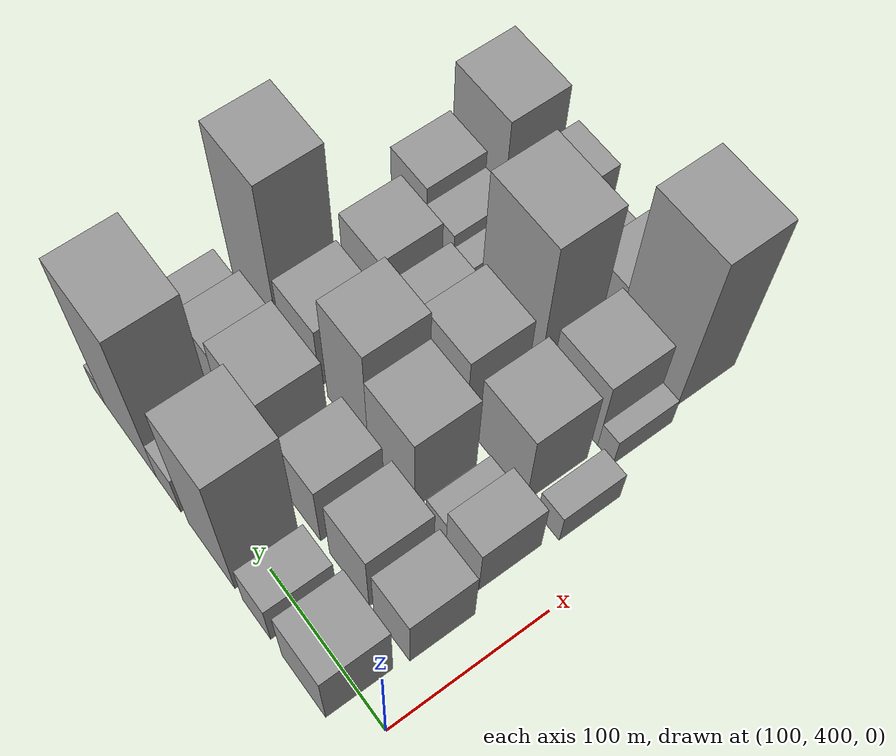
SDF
<sdf version="1.6">
 <world name="default">
  <model name="building_36">
   <static>1</static>
   <pose>100.0000 441.1656 0 0.000000 0.000000 0.000000</pose>
   <link name="link">
    <pose>0 0 31.50 0 0 0</pose>
    <collision name="collision"><geometry><box><size>40.0000 37.6408 63.0000</size></box></geometry></collision>
    <visual name="visual">
     <cast_shadows>0</cast_shadows>
     <geometry><box><size>40.0000 37.6408 63.0000</size></box></geometry>
     <material>
      <script>
       <uri>model://grey_wall/materials/scripts</uri>
       <uri>model://grey_wall/materials/textures</uri>
       <name>vrc/grey_wall</name>
      </script>
     </material>
    </visual>
   </link>
  </model>
  <model name="building_37">
   <static>1</static>
   <pose>100.0000 482.5473 0 0.000000 0.000000 0.000000</pose>
   <link name="link">
    <pose>0 0 22.50 0 0 0</pose>
    <collision name="collision"><geometry><box><size>40.0000 25.1226 45.0000</size></box></geometry></collision>
    <visual name="visual">
     <cast_shadows>0</cast_shadows>
     <geometry><box><size>40.0000 25.1226 45.0000</size></box></geometry>
     <material>
      <script>
       <uri>model://grey_wall/materials/scripts</uri>
       <uri>model://grey_wall/materials/textures</uri>
       <name>vrc/grey_wall</name>
      </script>
     </material>
    </visual>
   </link>
  </model>
  <model name="building_38">
   <static>1</static>
   <pose>100.0000 523.8339 0 0.000000 0.000000 0.000000</pose>
   <link name="link">
    <pose>0 0 69.00 0 0 0</pose>
    <collision name="collision"><geometry><box><size>40.0000 43.4507 138.0000</size></box></geometry></collision>
    <visual name="visual">
     <cast_shadows>0</cast_shadows>
     <geometry><box><size>40.0000 43.4507 138.0000</size></box></geometry>
     <material>
      <script>
       <uri>model://grey_wall/materials/scripts</uri>
       <uri>model://grey_wall/materials/textures</uri>
       <name>vrc/grey_wall</name>
      </script>
     </material>
    </visual>
   </link>
  </model>
  <model name="building_39">
   <static>1</static>
   <pose>100.0000 564.3673 0 0.000000 0.000000 0.000000</pose>
   <link name="link">
    <pose>0 0 21.00 0 0 0</pose>
    <collision name="collision"><geometry><box><size>40.0000 23.6162 42.0000</size></box></geometry></collision>
    <visual name="visual">
     <cast_shadows>0</cast_shadows>
     <geometry><box><size>40.0000 23.6162 42.0000</size></box></geometry>
     <material>
      <script>
       <uri>model://grey_wall/materials/scripts</uri>
       <uri>model://grey_wall/materials/textures</uri>
       <name>vrc/grey_wall</name>
      </script>
     </material>
    </visual>
   </link>
  </model>
  <model name="building_40">
   <static>1</static>
   <pose>100.0000 601.8708 0 0.000000 0.000000 0.000000</pose>
   <link name="link">
    <pose>0 0 78.00 0 0 0</pose>
    <collision name="collision"><geometry><box><size>40.0000 51.3907 156.0000</size></box></geometry></collision>
    <visual name="visual">
     <cast_shadows>0</cast_shadows>
     <geometry><box><size>40.0000 51.3907 156.0000</size></box></geometry>
     <material>
      <script>
       <uri>model://grey_wall/materials/scripts</uri>
       <uri>model://grey_wall/materials/textures</uri>
       <name>vrc/grey_wall</name>
      </script>
     </material>
    </visual>
   </link>
  </model>
  <model name="building_41">
   <static>1</static>
   <pose>100.0000 633.8620 0 0.000000 0.000000 0.000000</pose>
   <link name="link">
    <pose>0 0 13.50 0 0 0</pose>
    <collision name="collision"><geometry><box><size>40.0000 12.5917 27.0000</size></box></geometry></collision>
    <visual name="visual">
     <cast_shadows>0</cast_shadows>
     <geometry><box><size>40.0000 12.5917 27.0000</size></box></geometry>
     <material>
      <script>
       <uri>model://grey_wall/materials/scripts</uri>
       <uri>model://grey_wall/materials/textures</uri>
       <name>vrc/grey_wall</name>
      </script>
     </material>
    </visual>
   </link>
  </model>
  <model name="building_84">
   <static>1</static>
   <pose>149.0000 435.7550 0 0.000000 0.000000 0.000000</pose>
   <link name="link">
    <pose>0 0 28.50 0 0 0</pose>
    <collision name="collision"><geometry><box><size>40.0000 30.4782 57.0000</size></box></geometry></collision>
    <visual name="visual">
     <cast_shadows>0</cast_shadows>
     <geometry><box><size>40.0000 30.4782 57.0000</size></box></geometry>
     <material>
      <script>
       <uri>model://grey_wall/materials/scripts</uri>
       <uri>model://grey_wall/materials/textures</uri>
       <name>vrc/grey_wall</name>
      </script>
     </material>
    </visual>
   </link>
  </model>
  <model name="building_85">
   <static>1</static>
   <pose>149.0000 472.2001 0 0.000000 0.000000 0.000000</pose>
   <link name="link">
    <pose>0 0 33.00 0 0 0</pose>
    <collision name="collision"><geometry><box><size>40.0000 34.4119 66.0000</size></box></geometry></collision>
    <visual name="visual">
     <cast_shadows>0</cast_shadows>
     <geometry><box><size>40.0000 34.4119 66.0000</size></box></geometry>
     <material>
      <script>
       <uri>model://grey_wall/materials/scripts</uri>
       <uri>model://grey_wall/materials/textures</uri>
       <name>vrc/grey_wall</name>
      </script>
     </material>
    </visual>
   </link>
  </model>
  <model name="building_86">
   <static>1</static>
   <pose>149.0000 514.1675 0 0.000000 0.000000 0.000000</pose>
   <link name="link">
    <pose>0 0 33.00 0 0 0</pose>
    <collision name="collision"><geometry><box><size>40.0000 33.5229 66.0000</size></box></geometry></collision>
    <visual name="visual">
     <cast_shadows>0</cast_shadows>
     <geometry><box><size>40.0000 33.5229 66.0000</size></box></geometry>
     <material>
      <script>
       <uri>model://grey_wall/materials/scripts</uri>
       <uri>model://grey_wall/materials/textures</uri>
       <name>vrc/grey_wall</name>
      </script>
     </material>
    </visual>
   </link>
  </model>
  <model name="building_87">
   <static>1</static>
   <pose>149.0000 542.8155 0 0.000000 0.000000 0.000000</pose>
   <link name="link">
    <pose>0 0 12.00 0 0 0</pose>
    <collision name="collision"><geometry><box><size>40.0000 9.7730 24.0000</size></box></geometry></collision>
    <visual name="visual">
     <cast_shadows>0</cast_shadows>
     <geometry><box><size>40.0000 9.7730 24.0000</size></box></geometry>
     <material>
      <script>
       <uri>model://grey_wall/materials/scripts</uri>
       <uri>model://grey_wall/materials/textures</uri>
       <name>vrc/grey_wall</name>
      </script>
     </material>
    </visual>
   </link>
  </model>
  <model name="building_88">
   <static>1</static>
   <pose>149.0000 569.1627 0 0.000000 0.000000 0.000000</pose>
   <link name="link">
    <pose>0 0 37.50 0 0 0</pose>
    <collision name="collision"><geometry><box><size>40.0000 42.9213 75.0000</size></box></geometry></collision>
    <visual name="visual">
     <cast_shadows>0</cast_shadows>
     <geometry><box><size>40.0000 42.9213 75.0000</size></box></geometry>
     <material>
      <script>
       <uri>model://grey_wall/materials/scripts</uri>
       <uri>model://grey_wall/materials/textures</uri>
       <name>vrc/grey_wall</name>
      </script>
     </material>
    </visual>
   </link>
  </model>
  <model name="building_89">
   <static>1</static>
   <pose>149.0000 606.3343 0 0.000000 0.000000 0.000000</pose>
   <link name="link">
    <pose>0 0 30.00 0 0 0</pose>
    <collision name="collision"><geometry><box><size>40.0000 31.4221 60.0000</size></box></geometry></collision>
    <visual name="visual">
     <cast_shadows>0</cast_shadows>
     <geometry><box><size>40.0000 31.4221 60.0000</size></box></geometry>
     <material>
      <script>
       <uri>model://grey_wall/materials/scripts</uri>
       <uri>model://grey_wall/materials/textures</uri>
       <name>vrc/grey_wall</name>
      </script>
     </material>
    </visual>
   </link>
  </model>
  <model name="building_90">
   <static>1</static>
   <pose>149.0000 639.8095 0 0.000000 0.000000 0.000000</pose>
   <link name="link">
    <pose>0 0 21.00 0 0 0</pose>
    <collision name="collision"><geometry><box><size>40.0000 21.5283 42.0000</size></box></geometry></collision>
    <visual name="visual">
     <cast_shadows>0</cast_shadows>
     <geometry><box><size>40.0000 21.5283 42.0000</size></box></geometry>
     <material>
      <script>
       <uri>model://grey_wall/materials/scripts</uri>
       <uri>model://grey_wall/materials/textures</uri>
       <name>vrc/grey_wall</name>
      </script>
     </material>
    </visual>
   </link>
  </model>
  <model name="building_133">
   <static>1</static>
   <pose>198.0000 442.9491 0 0.000000 0.000000 0.000000</pose>
   <link name="link">
    <pose>0 0 25.50 0 0 0</pose>
    <collision name="collision"><geometry><box><size>40.0000 27.4139 51.0000</size></box></geometry></collision>
    <visual name="visual">
     <cast_shadows>0</cast_shadows>
     <geometry><box><size>40.0000 27.4139 51.0000</size></box></geometry>
     <material>
      <script>
       <uri>model://grey_wall/materials/scripts</uri>
       <uri>model://grey_wall/materials/textures</uri>
       <name>vrc/grey_wall</name>
      </script>
     </material>
    </visual>
   </link>
  </model>
  <model name="building_134">
   <static>1</static>
   <pose>198.0000 465.0975 0 0.000000 0.000000 0.000000</pose>
   <link name="link">
    <pose>0 0 16.50 0 0 0</pose>
    <collision name="collision"><geometry><box><size>40.0000 16.8830 33.0000</size></box></geometry></collision>
    <visual name="visual">
     <cast_shadows>0</cast_shadows>
     <geometry><box><size>40.0000 16.8830 33.0000</size></box></geometry>
     <material>
      <script>
       <uri>model://grey_wall/materials/scripts</uri>
       <uri>model://grey_wall/materials/textures</uri>
       <name>vrc/grey_wall</name>
      </script>
     </material>
    </visual>
   </link>
  </model>
  <model name="building_135">
   <static>1</static>
   <pose>198.0000 503.9978 0 0.000000 0.000000 0.000000</pose>
   <link name="link">
    <pose>0 0 40.50 0 0 0</pose>
    <collision name="collision"><geometry><box><size>40.0000 40.9177 81.0000</size></box></geometry></collision>
    <visual name="visual">
     <cast_shadows>0</cast_shadows>
     <geometry><box><size>40.0000 40.9177 81.0000</size></box></geometry>
     <material>
      <script>
       <uri>model://grey_wall/materials/scripts</uri>
       <uri>model://grey_wall/materials/textures</uri>
       <name>vrc/grey_wall</name>
      </script>
     </material>
    </visual>
   </link>
  </model>
  <model name="building_136">
   <static>1</static>
   <pose>198.0000 543.0552 0 0.000000 0.000000 0.000000</pose>
   <link name="link">
    <pose>0 0 54.00 0 0 0</pose>
    <collision name="collision"><geometry><box><size>40.0000 37.1970 108.0000</size></box></geometry></collision>
    <visual name="visual">
     <cast_shadows>0</cast_shadows>
     <geometry><box><size>40.0000 37.1970 108.0000</size></box></geometry>
     <material>
      <script>
       <uri>model://grey_wall/materials/scripts</uri>
       <uri>model://grey_wall/materials/textures</uri>
       <name>vrc/grey_wall</name>
      </script>
     </material>
    </visual>
   </link>
  </model>
  <model name="building_137">
   <static>1</static>
   <pose>198.0000 587.2409 0 0.000000 0.000000 0.000000</pose>
   <link name="link">
    <pose>0 0 31.50 0 0 0</pose>
    <collision name="collision"><geometry><box><size>40.0000 37.1743 63.0000</size></box></geometry></collision>
    <visual name="visual">
     <cast_shadows>0</cast_shadows>
     <geometry><box><size>40.0000 37.1743 63.0000</size></box></geometry>
     <material>
      <script>
       <uri>model://grey_wall/materials/scripts</uri>
       <uri>model://grey_wall/materials/textures</uri>
       <name>vrc/grey_wall</name>
      </script>
     </material>
    </visual>
   </link>
  </model>
  <model name="building_138">
   <static>1</static>
   <pose>198.0000 631.2155 0 0.000000 0.000000 0.000000</pose>
   <link name="link">
    <pose>0 0 73.50 0 0 0</pose>
    <collision name="collision"><geometry><box><size>40.0000 44.7749 147.0000</size></box></geometry></collision>
    <visual name="visual">
     <cast_shadows>0</cast_shadows>
     <geometry><box><size>40.0000 44.7749 147.0000</size></box></geometry>
     <material>
      <script>
       <uri>model://grey_wall/materials/scripts</uri>
       <uri>model://grey_wall/materials/textures</uri>
       <name>vrc/grey_wall</name>
      </script>
     </material>
    </visual>
   </link>
  </model>
  <model name="building_178">
   <static>1</static>
   <pose>247.0000 434.7086 0 0.000000 0.000000 0.000000</pose>
   <link name="link">
    <pose>0 0 15.00 0 0 0</pose>
    <collision name="collision"><geometry><box><size>40.0000 17.7222 30.0000</size></box></geometry></collision>
    <visual name="visual">
     <cast_shadows>0</cast_shadows>
     <geometry><box><size>40.0000 17.7222 30.0000</size></box></geometry>
     <material>
      <script>
       <uri>model://grey_wall/materials/scripts</uri>
       <uri>model://grey_wall/materials/textures</uri>
       <name>vrc/grey_wall</name>
      </script>
     </material>
    </visual>
   </link>
  </model>
  <model name="building_179">
   <static>1</static>
   <pose>247.0000 473.1462 0 0.000000 0.000000 0.000000</pose>
   <link name="link">
    <pose>0 0 37.50 0 0 0</pose>
    <collision name="collision"><geometry><box><size>40.0000 41.1530 75.0000</size></box></geometry></collision>
    <visual name="visual">
     <cast_shadows>0</cast_shadows>
     <geometry><box><size>40.0000 41.1530 75.0000</size></box></geometry>
     <material>
      <script>
       <uri>model://grey_wall/materials/scripts</uri>
       <uri>model://grey_wall/materials/textures</uri>
       <name>vrc/grey_wall</name>
      </script>
     </material>
    </visual>
   </link>
  </model>
  <model name="building_180">
   <static>1</static>
   <pose>247.0000 498.9372 0 0.000000 0.000000 0.000000</pose>
   <link name="link">
    <pose>0 0 10.50 0 0 0</pose>
    <collision name="collision"><geometry><box><size>40.0000 10.4289 21.0000</size></box></geometry></collision>
    <visual name="visual">
     <cast_shadows>0</cast_shadows>
     <geometry><box><size>40.0000 10.4289 21.0000</size></box></geometry>
     <material>
      <script>
       <uri>model://grey_wall/materials/scripts</uri>
       <uri>model://grey_wall/materials/textures</uri>
       <name>vrc/grey_wall</name>
      </script>
     </material>
    </visual>
   </link>
  </model>
  <model name="building_181">
   <static>1</static>
   <pose>247.0000 524.1149 0 0.000000 0.000000 0.000000</pose>
   <link name="link">
    <pose>0 0 37.50 0 0 0</pose>
    <collision name="collision"><geometry><box><size>40.0000 39.9265 75.0000</size></box></geometry></collision>
    <visual name="visual">
     <cast_shadows>0</cast_shadows>
     <geometry><box><size>40.0000 39.9265 75.0000</size></box></geometry>
     <material>
      <script>
       <uri>model://grey_wall/materials/scripts</uri>
       <uri>model://grey_wall/materials/textures</uri>
       <name>vrc/grey_wall</name>
      </script>
     </material>
    </visual>
   </link>
  </model>
  <model name="building_182">
   <static>1</static>
   <pose>247.0000 558.4577 0 0.000000 0.000000 0.000000</pose>
   <link name="link">
    <pose>0 0 28.50 0 0 0</pose>
    <collision name="collision"><geometry><box><size>40.0000 28.7592 57.0000</size></box></geometry></collision>
    <visual name="visual">
     <cast_shadows>0</cast_shadows>
     <geometry><box><size>40.0000 28.7592 57.0000</size></box></geometry>
     <material>
      <script>
       <uri>model://grey_wall/materials/scripts</uri>
       <uri>model://grey_wall/materials/textures</uri>
       <name>vrc/grey_wall</name>
      </script>
     </material>
    </visual>
   </link>
  </model>
  <model name="building_183">
   <static>1</static>
   <pose>247.0000 598.2176 0 0.000000 0.000000 0.000000</pose>
   <link name="link">
    <pose>0 0 33.00 0 0 0</pose>
    <collision name="collision"><geometry><box><size>40.0000 36.7606 66.0000</size></box></geometry></collision>
    <visual name="visual">
     <cast_shadows>0</cast_shadows>
     <geometry><box><size>40.0000 36.7606 66.0000</size></box></geometry>
     <material>
      <script>
       <uri>model://grey_wall/materials/scripts</uri>
       <uri>model://grey_wall/materials/textures</uri>
       <name>vrc/grey_wall</name>
      </script>
     </material>
    </visual>
   </link>
  </model>
  <model name="building_229">
   <static>1</static>
   <pose>296.0000 448.3565 0 0.000000 0.000000 0.000000</pose>
   <link name="link">
    <pose>0 0 13.50 0 0 0</pose>
    <collision name="collision"><geometry><box><size>40.0000 12.9251 27.0000</size></box></geometry></collision>
    <visual name="visual">
     <cast_shadows>0</cast_shadows>
     <geometry><box><size>40.0000 12.9251 27.0000</size></box></geometry>
     <material>
      <script>
       <uri>model://grey_wall/materials/scripts</uri>
       <uri>model://grey_wall/materials/textures</uri>
       <name>vrc/grey_wall</name>
      </script>
     </material>
    </visual>
   </link>
  </model>
  <model name="building_230">
   <static>1</static>
   <pose>296.0000 475.1064 0 0.000000 0.000000 0.000000</pose>
   <link name="link">
    <pose>0 0 34.50 0 0 0</pose>
    <collision name="collision"><geometry><box><size>40.0000 40.5747 69.0000</size></box></geometry></collision>
    <visual name="visual">
     <cast_shadows>0</cast_shadows>
     <geometry><box><size>40.0000 40.5747 69.0000</size></box></geometry>
     <material>
      <script>
       <uri>model://grey_wall/materials/scripts</uri>
       <uri>model://grey_wall/materials/textures</uri>
       <name>vrc/grey_wall</name>
      </script>
     </material>
    </visual>
   </link>
  </model>
  <model name="building_231">
   <static>1</static>
   <pose>296.0000 530.6034 0 0.000000 0.000000 0.000000</pose>
   <link name="link">
    <pose>0 0 67.50 0 0 0</pose>
    <collision name="collision"><geometry><box><size>40.0000 52.4194 135.0000</size></box></geometry></collision>
    <visual name="visual">
     <cast_shadows>0</cast_shadows>
     <geometry><box><size>40.0000 52.4194 135.0000</size></box></geometry>
     <material>
      <script>
       <uri>model://grey_wall/materials/scripts</uri>
       <uri>model://grey_wall/materials/textures</uri>
       <name>vrc/grey_wall</name>
      </script>
     </material>
    </visual>
   </link>
  </model>
  <model name="building_232">
   <static>1</static>
   <pose>296.0000 573.0701 0 0.000000 0.000000 0.000000</pose>
   <link name="link">
    <pose>0 0 15.00 0 0 0</pose>
    <collision name="collision"><geometry><box><size>40.0000 16.5138 30.0000</size></box></geometry></collision>
    <visual name="visual">
     <cast_shadows>0</cast_shadows>
     <geometry><box><size>40.0000 16.5138 30.0000</size></box></geometry>
     <material>
      <script>
       <uri>model://grey_wall/materials/scripts</uri>
       <uri>model://grey_wall/materials/textures</uri>
       <name>vrc/grey_wall</name>
      </script>
     </material>
    </visual>
   </link>
  </model>
  <model name="building_233">
   <static>1</static>
   <pose>296.0000 593.6735 0 0.000000 0.000000 0.000000</pose>
   <link name="link">
    <pose>0 0 21.00 0 0 0</pose>
    <collision name="collision"><geometry><box><size>40.0000 24.6930 42.0000</size></box></geometry></collision>
    <visual name="visual">
     <cast_shadows>0</cast_shadows>
     <geometry><box><size>40.0000 24.6930 42.0000</size></box></geometry>
     <material>
      <script>
       <uri>model://grey_wall/materials/scripts</uri>
       <uri>model://grey_wall/materials/textures</uri>
       <name>vrc/grey_wall</name>
      </script>
     </material>
    </visual>
   </link>
  </model>
  <model name="building_234">
   <static>1</static>
   <pose>296.0000 622.4837 0 0.000000 0.000000 0.000000</pose>
   <link name="link">
    <pose>0 0 28.50 0 0 0</pose>
    <collision name="collision"><geometry><box><size>40.0000 32.9274 57.0000</size></box></geometry></collision>
    <visual name="visual">
     <cast_shadows>0</cast_shadows>
     <geometry><box><size>40.0000 32.9274 57.0000</size></box></geometry>
     <material>
      <script>
       <uri>model://grey_wall/materials/scripts</uri>
       <uri>model://grey_wall/materials/textures</uri>
       <name>vrc/grey_wall</name>
      </script>
     </material>
    </visual>
   </link>
  </model>
  <model name="building_278">
   <static>1</static>
   <pose>345.0000 473.0869 0 0.000000 0.000000 0.000000</pose>
   <link name="link">
    <pose>0 0 75.00 0 0 0</pose>
    <collision name="collision"><geometry><box><size>40.0000 51.0229 150.0000</size></box></geometry></collision>
    <visual name="visual">
     <cast_shadows>0</cast_shadows>
     <geometry><box><size>40.0000 51.0229 150.0000</size></box></geometry>
     <material>
      <script>
       <uri>model://grey_wall/materials/scripts</uri>
       <uri>model://grey_wall/materials/textures</uri>
       <name>vrc/grey_wall</name>
      </script>
     </material>
    </visual>
   </link>
  </model>
  <model name="building_279">
   <static>1</static>
   <pose>345.0000 513.4229 0 0.000000 0.000000 0.000000</pose>
   <link name="link">
    <pose>0 0 27.00 0 0 0</pose>
    <collision name="collision"><geometry><box><size>40.0000 29.6493 54.0000</size></box></geometry></collision>
    <visual name="visual">
     <cast_shadows>0</cast_shadows>
     <geometry><box><size>40.0000 29.6493 54.0000</size></box></geometry>
     <material>
      <script>
       <uri>model://grey_wall/materials/scripts</uri>
       <uri>model://grey_wall/materials/textures</uri>
       <name>vrc/grey_wall</name>
      </script>
     </material>
    </visual>
   </link>
  </model>
  <model name="building_280">
   <static>1</static>
   <pose>345.0000 537.1100 0 0.000000 0.000000 0.000000</pose>
   <link name="link">
    <pose>0 0 16.50 0 0 0</pose>
    <collision name="collision"><geometry><box><size>40.0000 17.7248 33.0000</size></box></geometry></collision>
    <visual name="visual">
     <cast_shadows>0</cast_shadows>
     <geometry><box><size>40.0000 17.7248 33.0000</size></box></geometry>
     <material>
      <script>
       <uri>model://grey_wall/materials/scripts</uri>
       <uri>model://grey_wall/materials/textures</uri>
       <name>vrc/grey_wall</name>
      </script>
     </material>
    </visual>
   </link>
  </model>
  <model name="building_281">
   <static>1</static>
   <pose>345.0000 572.4071 0 0.000000 0.000000 0.000000</pose>
   <link name="link">
    <pose>0 0 31.50 0 0 0</pose>
    <collision name="collision"><geometry><box><size>40.0000 34.8694 63.0000</size></box></geometry></collision>
    <visual name="visual">
     <cast_shadows>0</cast_shadows>
     <geometry><box><size>40.0000 34.8694 63.0000</size></box></geometry>
     <material>
      <script>
       <uri>model://grey_wall/materials/scripts</uri>
       <uri>model://grey_wall/materials/textures</uri>
       <name>vrc/grey_wall</name>
      </script>
     </material>
    </visual>
   </link>
  </model>
  <model name="building_282">
   <static>1</static>
   <pose>345.0000 622.9862 0 0.000000 0.000000 0.000000</pose>
   <link name="link">
    <pose>0 0 42.00 0 0 0</pose>
    <collision name="collision"><geometry><box><size>40.0000 48.2887 84.0000</size></box></geometry></collision>
    <visual name="visual">
     <cast_shadows>0</cast_shadows>
     <geometry><box><size>40.0000 48.2887 84.0000</size></box></geometry>
     <material>
      <script>
       <uri>model://grey_wall/materials/scripts</uri>
       <uri>model://grey_wall/materials/textures</uri>
       <name>vrc/grey_wall</name>
      </script>
     </material>
    </visual>
   </link>
  </model>
 </world>
</sdf>
